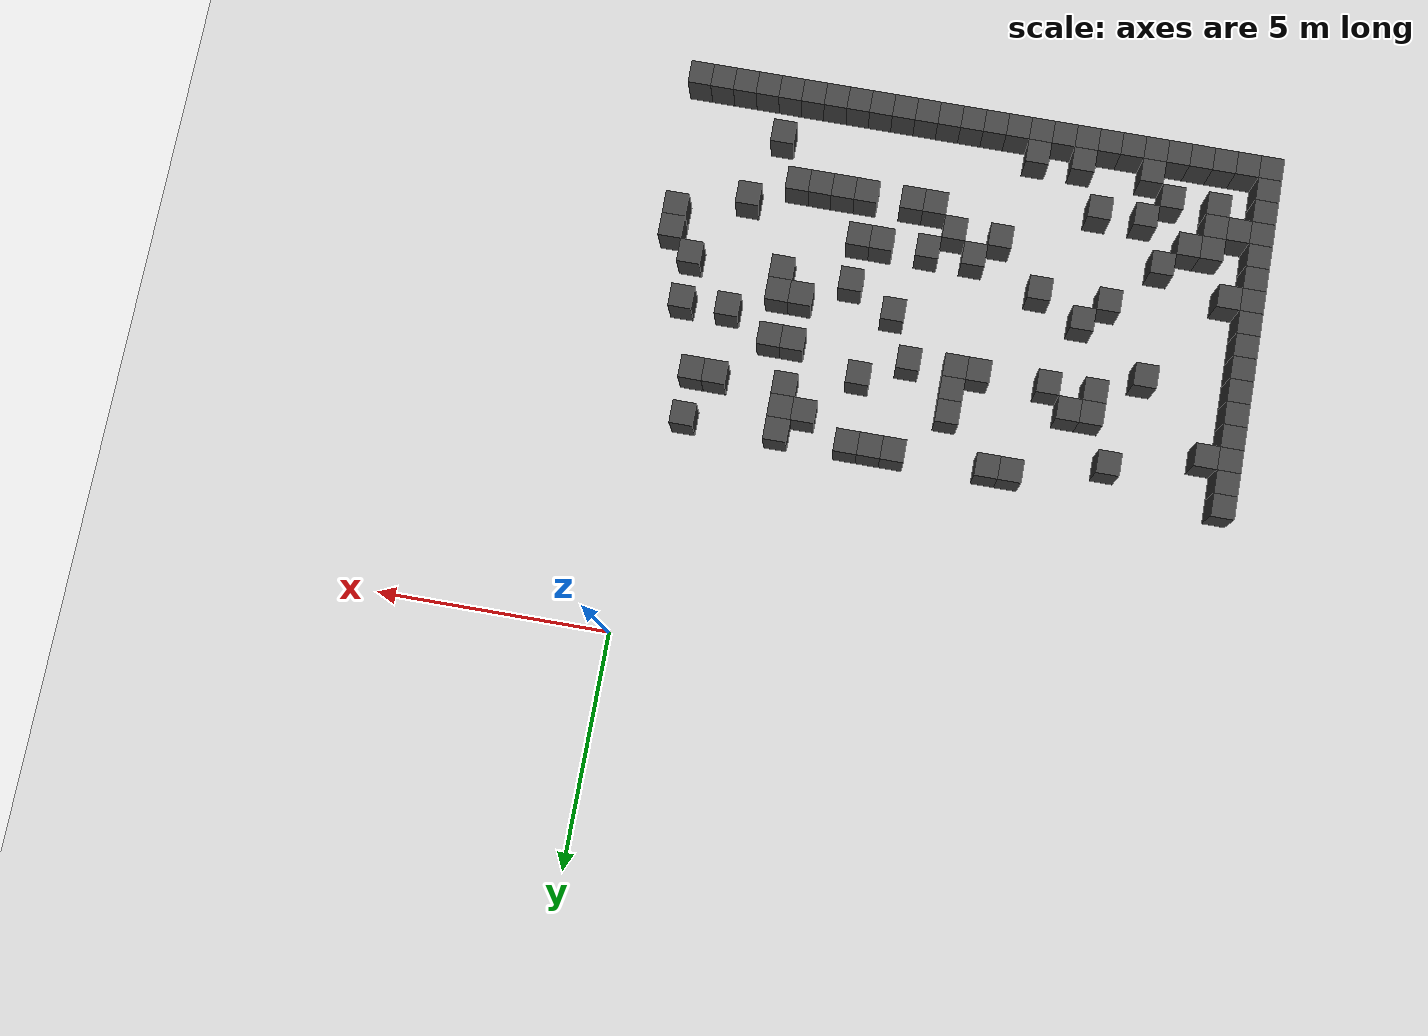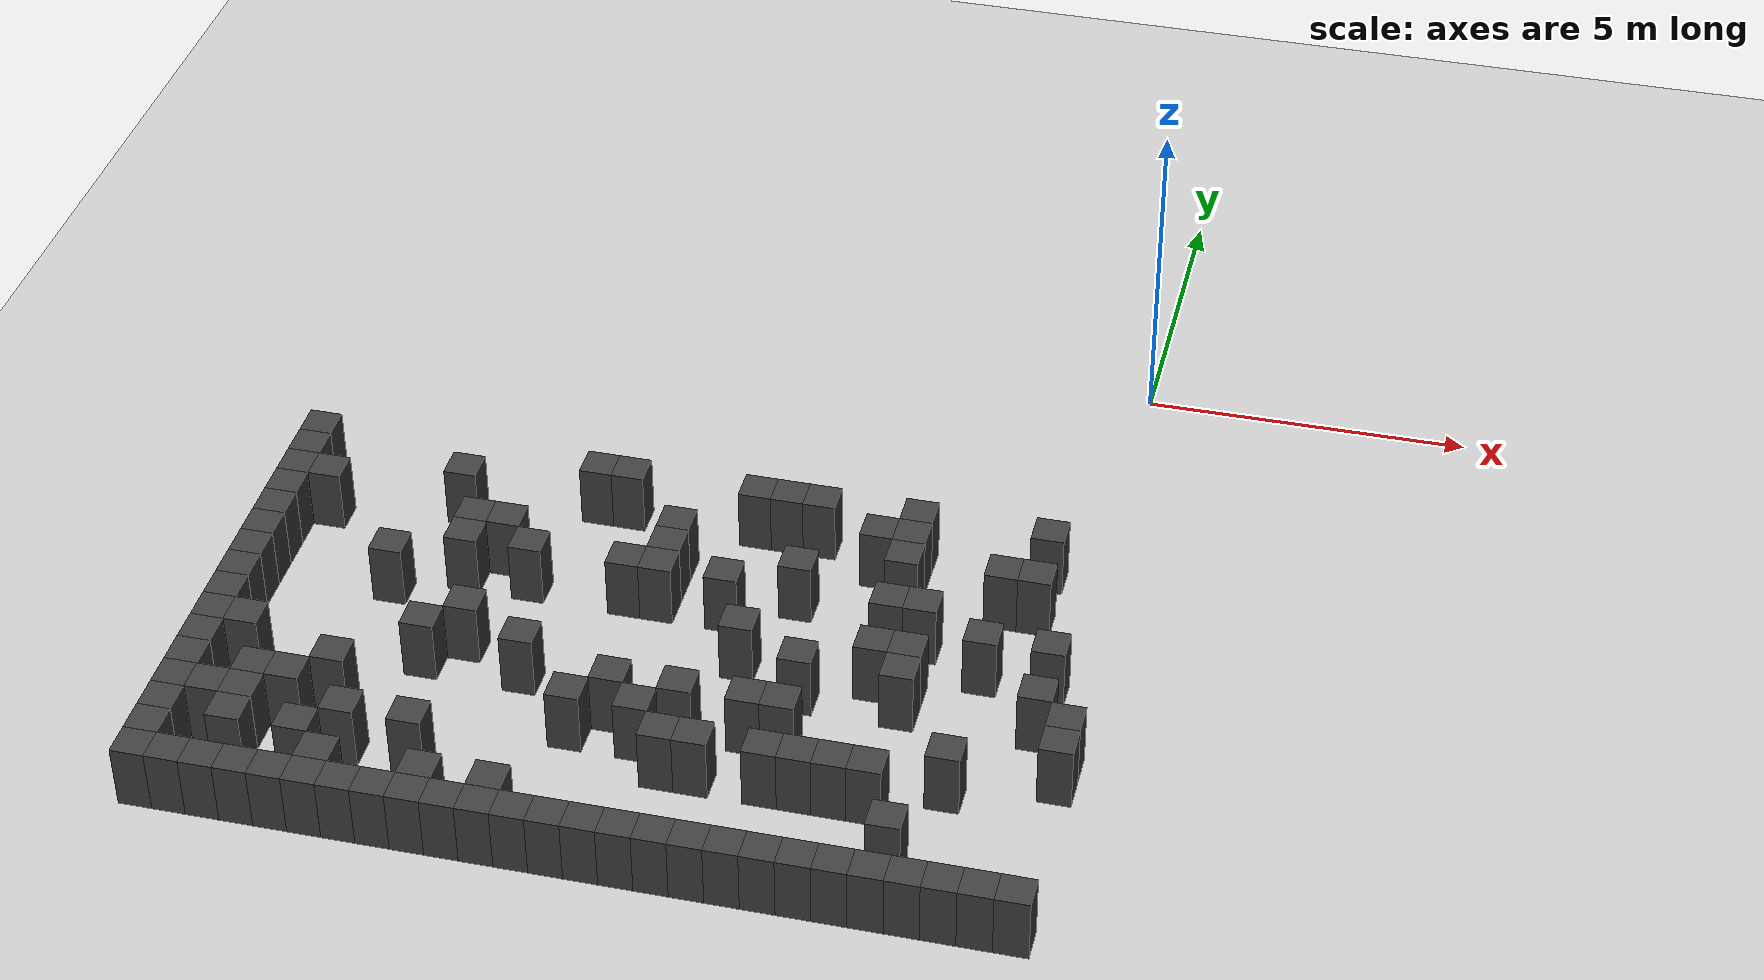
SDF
<sdf version="1.7">
 <world name="map_4009">
  <model name="ground_plane">
   <static>true</static>
   <link name="link">
    <collision name="collision">
     <geometry><plane><normal>0 0 1</normal><size>200 200</size></plane></geometry>
    </collision>
    <visual name="visual">
     <geometry><plane><normal>0 0 1</normal><size>200 200</size></plane></geometry>
     <material><ambient>0.8 0.8 0.8 1</ambient><diffuse>0.8 0.8 0.8 1</diffuse></material>
    </visual>
   </link>
  </model>
  <model name="maze_environment">
   <static>true</static>
   <link name="wall_420">
    <pose>-12.250 -4.750 0.500 0 0 0</pose>
    <collision name="col"><geometry><box><size>0.5 0.5 1.0</size></box></geometry></collision>
    <visual name="vis">
     <geometry><box><size>0.5 0.5 1.0</size></box></geometry>
     <material><ambient>0.15 0.15 0.15 1</ambient><diffuse>0.25 0.25 0.25 1</diffuse></material>
    </visual>
   </link>
   <link name="wall_421">
    <pose>-7.750 -4.750 0.500 0 0 0</pose>
    <collision name="col"><geometry><box><size>0.5 0.5 1.0</size></box></geometry></collision>
    <visual name="vis">
     <geometry><box><size>0.5 0.5 1.0</size></box></geometry>
     <material><ambient>0.15 0.15 0.15 1</ambient><diffuse>0.25 0.25 0.25 1</diffuse></material>
    </visual>
   </link>
   <link name="wall_422">
    <pose>-7.250 -4.750 0.500 0 0 0</pose>
    <collision name="col"><geometry><box><size>0.5 0.5 1.0</size></box></geometry></collision>
    <visual name="vis">
     <geometry><box><size>0.5 0.5 1.0</size></box></geometry>
     <material><ambient>0.15 0.15 0.15 1</ambient><diffuse>0.25 0.25 0.25 1</diffuse></material>
    </visual>
   </link>
   <link name="wall_423">
    <pose>-5.250 -4.750 0.500 0 0 0</pose>
    <collision name="col"><geometry><box><size>0.5 0.5 1.0</size></box></geometry></collision>
    <visual name="vis">
     <geometry><box><size>0.5 0.5 1.0</size></box></geometry>
     <material><ambient>0.15 0.15 0.15 1</ambient><diffuse>0.25 0.25 0.25 1</diffuse></material>
    </visual>
   </link>
   <link name="wall_424">
    <pose>-4.750 -4.750 0.500 0 0 0</pose>
    <collision name="col"><geometry><box><size>0.5 0.5 1.0</size></box></geometry></collision>
    <visual name="vis">
     <geometry><box><size>0.5 0.5 1.0</size></box></geometry>
     <material><ambient>0.15 0.15 0.15 1</ambient><diffuse>0.25 0.25 0.25 1</diffuse></material>
    </visual>
   </link>
   <link name="wall_425">
    <pose>-4.250 -4.750 0.500 0 0 0</pose>
    <collision name="col"><geometry><box><size>0.5 0.5 1.0</size></box></geometry></collision>
    <visual name="vis">
     <geometry><box><size>0.5 0.5 1.0</size></box></geometry>
     <material><ambient>0.15 0.15 0.15 1</ambient><diffuse>0.25 0.25 0.25 1</diffuse></material>
    </visual>
   </link>
   <link name="wall_426">
    <pose>-2.750 -4.750 0.500 0 0 0</pose>
    <collision name="col"><geometry><box><size>0.5 0.5 1.0</size></box></geometry></collision>
    <visual name="vis">
     <geometry><box><size>0.5 0.5 1.0</size></box></geometry>
     <material><ambient>0.15 0.15 0.15 1</ambient><diffuse>0.25 0.25 0.25 1</diffuse></material>
    </visual>
   </link>
   <link name="wall_427">
    <pose>-0.750 -4.750 0.500 0 0 0</pose>
    <collision name="col"><geometry><box><size>0.5 0.5 1.0</size></box></geometry></collision>
    <visual name="vis">
     <geometry><box><size>0.5 0.5 1.0</size></box></geometry>
     <material><ambient>0.15 0.15 0.15 1</ambient><diffuse>0.25 0.25 0.25 1</diffuse></material>
    </visual>
   </link>
   <link name="wall_435">
    <pose>-12.250 -5.250 0.500 0 0 0</pose>
    <collision name="col"><geometry><box><size>0.5 0.5 1.0</size></box></geometry></collision>
    <visual name="vis">
     <geometry><box><size>0.5 0.5 1.0</size></box></geometry>
     <material><ambient>0.15 0.15 0.15 1</ambient><diffuse>0.25 0.25 0.25 1</diffuse></material>
    </visual>
   </link>
   <link name="wall_436">
    <pose>-9.750 -5.250 0.500 0 0 0</pose>
    <collision name="col"><geometry><box><size>0.5 0.5 1.0</size></box></geometry></collision>
    <visual name="vis">
     <geometry><box><size>0.5 0.5 1.0</size></box></geometry>
     <material><ambient>0.15 0.15 0.15 1</ambient><diffuse>0.25 0.25 0.25 1</diffuse></material>
    </visual>
   </link>
   <link name="wall_437">
    <pose>-3.250 -5.250 0.500 0 0 0</pose>
    <collision name="col"><geometry><box><size>0.5 0.5 1.0</size></box></geometry></collision>
    <visual name="vis">
     <geometry><box><size>0.5 0.5 1.0</size></box></geometry>
     <material><ambient>0.15 0.15 0.15 1</ambient><diffuse>0.25 0.25 0.25 1</diffuse></material>
    </visual>
   </link>
   <link name="wall_438">
    <pose>-2.750 -5.250 0.500 0 0 0</pose>
    <collision name="col"><geometry><box><size>0.5 0.5 1.0</size></box></geometry></collision>
    <visual name="vis">
     <geometry><box><size>0.5 0.5 1.0</size></box></geometry>
     <material><ambient>0.15 0.15 0.15 1</ambient><diffuse>0.25 0.25 0.25 1</diffuse></material>
    </visual>
   </link>
   <link name="wall_444">
    <pose>-12.250 -5.750 0.500 0 0 0</pose>
    <collision name="col"><geometry><box><size>0.5 0.5 1.0</size></box></geometry></collision>
    <visual name="vis">
     <geometry><box><size>0.5 0.5 1.0</size></box></geometry>
     <material><ambient>0.15 0.15 0.15 1</ambient><diffuse>0.25 0.25 0.25 1</diffuse></material>
    </visual>
   </link>
   <link name="wall_445">
    <pose>-11.750 -5.750 0.500 0 0 0</pose>
    <collision name="col"><geometry><box><size>0.5 0.5 1.0</size></box></geometry></collision>
    <visual name="vis">
     <geometry><box><size>0.5 0.5 1.0</size></box></geometry>
     <material><ambient>0.15 0.15 0.15 1</ambient><diffuse>0.25 0.25 0.25 1</diffuse></material>
    </visual>
   </link>
   <link name="wall_446">
    <pose>-6.250 -5.750 0.500 0 0 0</pose>
    <collision name="col"><geometry><box><size>0.5 0.5 1.0</size></box></geometry></collision>
    <visual name="vis">
     <geometry><box><size>0.5 0.5 1.0</size></box></geometry>
     <material><ambient>0.15 0.15 0.15 1</ambient><diffuse>0.25 0.25 0.25 1</diffuse></material>
    </visual>
   </link>
   <link name="wall_447">
    <pose>-2.750 -5.750 0.500 0 0 0</pose>
    <collision name="col"><geometry><box><size>0.5 0.5 1.0</size></box></geometry></collision>
    <visual name="vis">
     <geometry><box><size>0.5 0.5 1.0</size></box></geometry>
     <material><ambient>0.15 0.15 0.15 1</ambient><diffuse>0.25 0.25 0.25 1</diffuse></material>
    </visual>
   </link>
   <link name="wall_448">
    <pose>-1.250 -5.750 0.500 0 0 0</pose>
    <collision name="col"><geometry><box><size>0.5 0.5 1.0</size></box></geometry></collision>
    <visual name="vis">
     <geometry><box><size>0.5 0.5 1.0</size></box></geometry>
     <material><ambient>0.15 0.15 0.15 1</ambient><diffuse>0.25 0.25 0.25 1</diffuse></material>
    </visual>
   </link>
   <link name="wall_449">
    <pose>-0.750 -5.750 0.500 0 0 0</pose>
    <collision name="col"><geometry><box><size>0.5 0.5 1.0</size></box></geometry></collision>
    <visual name="vis">
     <geometry><box><size>0.5 0.5 1.0</size></box></geometry>
     <material><ambient>0.15 0.15 0.15 1</ambient><diffuse>0.25 0.25 0.25 1</diffuse></material>
    </visual>
   </link>
   <link name="wall_455">
    <pose>-12.250 -6.250 0.500 0 0 0</pose>
    <collision name="col"><geometry><box><size>0.5 0.5 1.0</size></box></geometry></collision>
    <visual name="vis">
     <geometry><box><size>0.5 0.5 1.0</size></box></geometry>
     <material><ambient>0.15 0.15 0.15 1</ambient><diffuse>0.25 0.25 0.25 1</diffuse></material>
    </visual>
   </link>
   <link name="wall_456">
    <pose>-9.250 -6.250 0.500 0 0 0</pose>
    <collision name="col"><geometry><box><size>0.5 0.5 1.0</size></box></geometry></collision>
    <visual name="vis">
     <geometry><box><size>0.5 0.5 1.0</size></box></geometry>
     <material><ambient>0.15 0.15 0.15 1</ambient><diffuse>0.25 0.25 0.25 1</diffuse></material>
    </visual>
   </link>
   <link name="wall_457">
    <pose>-8.750 -6.250 0.500 0 0 0</pose>
    <collision name="col"><geometry><box><size>0.5 0.5 1.0</size></box></geometry></collision>
    <visual name="vis">
     <geometry><box><size>0.5 0.5 1.0</size></box></geometry>
     <material><ambient>0.15 0.15 0.15 1</ambient><diffuse>0.25 0.25 0.25 1</diffuse></material>
    </visual>
   </link>
   <link name="wall_458">
    <pose>-6.250 -6.250 0.500 0 0 0</pose>
    <collision name="col"><geometry><box><size>0.5 0.5 1.0</size></box></geometry></collision>
    <visual name="vis">
     <geometry><box><size>0.5 0.5 1.0</size></box></geometry>
     <material><ambient>0.15 0.15 0.15 1</ambient><diffuse>0.25 0.25 0.25 1</diffuse></material>
    </visual>
   </link>
   <link name="wall_459">
    <pose>-4.250 -6.250 0.500 0 0 0</pose>
    <collision name="col"><geometry><box><size>0.5 0.5 1.0</size></box></geometry></collision>
    <visual name="vis">
     <geometry><box><size>0.5 0.5 1.0</size></box></geometry>
     <material><ambient>0.15 0.15 0.15 1</ambient><diffuse>0.25 0.25 0.25 1</diffuse></material>
    </visual>
   </link>
   <link name="wall_464">
    <pose>-12.250 -6.750 0.500 0 0 0</pose>
    <collision name="col"><geometry><box><size>0.5 0.5 1.0</size></box></geometry></collision>
    <visual name="vis">
     <geometry><box><size>0.5 0.5 1.0</size></box></geometry>
     <material><ambient>0.15 0.15 0.15 1</ambient><diffuse>0.25 0.25 0.25 1</diffuse></material>
    </visual>
   </link>
   <link name="wall_465">
    <pose>-9.250 -6.750 0.500 0 0 0</pose>
    <collision name="col"><geometry><box><size>0.5 0.5 1.0</size></box></geometry></collision>
    <visual name="vis">
     <geometry><box><size>0.5 0.5 1.0</size></box></geometry>
     <material><ambient>0.15 0.15 0.15 1</ambient><diffuse>0.25 0.25 0.25 1</diffuse></material>
    </visual>
   </link>
   <link name="wall_466">
    <pose>-8.250 -6.750 0.500 0 0 0</pose>
    <collision name="col"><geometry><box><size>0.5 0.5 1.0</size></box></geometry></collision>
    <visual name="vis">
     <geometry><box><size>0.5 0.5 1.0</size></box></geometry>
     <material><ambient>0.15 0.15 0.15 1</ambient><diffuse>0.25 0.25 0.25 1</diffuse></material>
    </visual>
   </link>
   <link name="wall_467">
    <pose>-6.750 -6.750 0.500 0 0 0</pose>
    <collision name="col"><geometry><box><size>0.5 0.5 1.0</size></box></geometry></collision>
    <visual name="vis">
     <geometry><box><size>0.5 0.5 1.0</size></box></geometry>
     <material><ambient>0.15 0.15 0.15 1</ambient><diffuse>0.25 0.25 0.25 1</diffuse></material>
    </visual>
   </link>
   <link name="wall_468">
    <pose>-6.250 -6.750 0.500 0 0 0</pose>
    <collision name="col"><geometry><box><size>0.5 0.5 1.0</size></box></geometry></collision>
    <visual name="vis">
     <geometry><box><size>0.5 0.5 1.0</size></box></geometry>
     <material><ambient>0.15 0.15 0.15 1</ambient><diffuse>0.25 0.25 0.25 1</diffuse></material>
    </visual>
   </link>
   <link name="wall_469">
    <pose>-5.250 -6.750 0.500 0 0 0</pose>
    <collision name="col"><geometry><box><size>0.5 0.5 1.0</size></box></geometry></collision>
    <visual name="vis">
     <geometry><box><size>0.5 0.5 1.0</size></box></geometry>
     <material><ambient>0.15 0.15 0.15 1</ambient><diffuse>0.25 0.25 0.25 1</diffuse></material>
    </visual>
   </link>
   <link name="wall_470">
    <pose>-2.750 -6.750 0.500 0 0 0</pose>
    <collision name="col"><geometry><box><size>0.5 0.5 1.0</size></box></geometry></collision>
    <visual name="vis">
     <geometry><box><size>0.5 0.5 1.0</size></box></geometry>
     <material><ambient>0.15 0.15 0.15 1</ambient><diffuse>0.25 0.25 0.25 1</diffuse></material>
    </visual>
   </link>
   <link name="wall_471">
    <pose>-2.250 -6.750 0.500 0 0 0</pose>
    <collision name="col"><geometry><box><size>0.5 0.5 1.0</size></box></geometry></collision>
    <visual name="vis">
     <geometry><box><size>0.5 0.5 1.0</size></box></geometry>
     <material><ambient>0.15 0.15 0.15 1</ambient><diffuse>0.25 0.25 0.25 1</diffuse></material>
    </visual>
   </link>
   <link name="wall_480">
    <pose>-12.250 -7.250 0.500 0 0 0</pose>
    <collision name="col"><geometry><box><size>0.5 0.5 1.0</size></box></geometry></collision>
    <visual name="vis">
     <geometry><box><size>0.5 0.5 1.0</size></box></geometry>
     <material><ambient>0.15 0.15 0.15 1</ambient><diffuse>0.25 0.25 0.25 1</diffuse></material>
    </visual>
   </link>
   <link name="wall_481">
    <pose>-10.250 -7.250 0.500 0 0 0</pose>
    <collision name="col"><geometry><box><size>0.5 0.5 1.0</size></box></geometry></collision>
    <visual name="vis">
     <geometry><box><size>0.5 0.5 1.0</size></box></geometry>
     <material><ambient>0.15 0.15 0.15 1</ambient><diffuse>0.25 0.25 0.25 1</diffuse></material>
    </visual>
   </link>
   <link name="wall_482">
    <pose>-1.250 -7.250 0.500 0 0 0</pose>
    <collision name="col"><geometry><box><size>0.5 0.5 1.0</size></box></geometry></collision>
    <visual name="vis">
     <geometry><box><size>0.5 0.5 1.0</size></box></geometry>
     <material><ambient>0.15 0.15 0.15 1</ambient><diffuse>0.25 0.25 0.25 1</diffuse></material>
    </visual>
   </link>
   <link name="wall_483">
    <pose>-0.250 -7.250 0.500 0 0 0</pose>
    <collision name="col"><geometry><box><size>0.5 0.5 1.0</size></box></geometry></collision>
    <visual name="vis">
     <geometry><box><size>0.5 0.5 1.0</size></box></geometry>
     <material><ambient>0.15 0.15 0.15 1</ambient><diffuse>0.25 0.25 0.25 1</diffuse></material>
    </visual>
   </link>
   <link name="wall_497">
    <pose>-12.250 -7.750 0.500 0 0 0</pose>
    <collision name="col"><geometry><box><size>0.5 0.5 1.0</size></box></geometry></collision>
    <visual name="vis">
     <geometry><box><size>0.5 0.5 1.0</size></box></geometry>
     <material><ambient>0.15 0.15 0.15 1</ambient><diffuse>0.25 0.25 0.25 1</diffuse></material>
    </visual>
   </link>
   <link name="wall_498">
    <pose>-4.750 -7.750 0.500 0 0 0</pose>
    <collision name="col"><geometry><box><size>0.5 0.5 1.0</size></box></geometry></collision>
    <visual name="vis">
     <geometry><box><size>0.5 0.5 1.0</size></box></geometry>
     <material><ambient>0.15 0.15 0.15 1</ambient><diffuse>0.25 0.25 0.25 1</diffuse></material>
    </visual>
   </link>
   <link name="wall_499">
    <pose>-2.750 -7.750 0.500 0 0 0</pose>
    <collision name="col"><geometry><box><size>0.5 0.5 1.0</size></box></geometry></collision>
    <visual name="vis">
     <geometry><box><size>0.5 0.5 1.0</size></box></geometry>
     <material><ambient>0.15 0.15 0.15 1</ambient><diffuse>0.25 0.25 0.25 1</diffuse></material>
    </visual>
   </link>
   <link name="wall_500">
    <pose>-2.250 -7.750 0.500 0 0 0</pose>
    <collision name="col"><geometry><box><size>0.5 0.5 1.0</size></box></geometry></collision>
    <visual name="vis">
     <geometry><box><size>0.5 0.5 1.0</size></box></geometry>
     <material><ambient>0.15 0.15 0.15 1</ambient><diffuse>0.25 0.25 0.25 1</diffuse></material>
    </visual>
   </link>
   <link name="wall_505">
    <pose>-12.250 -8.250 0.500 0 0 0</pose>
    <collision name="col"><geometry><box><size>0.5 0.5 1.0</size></box></geometry></collision>
    <visual name="vis">
     <geometry><box><size>0.5 0.5 1.0</size></box></geometry>
     <material><ambient>0.15 0.15 0.15 1</ambient><diffuse>0.25 0.25 0.25 1</diffuse></material>
    </visual>
   </link>
   <link name="wall_506">
    <pose>-8.750 -8.250 0.500 0 0 0</pose>
    <collision name="col"><geometry><box><size>0.5 0.5 1.0</size></box></geometry></collision>
    <visual name="vis">
     <geometry><box><size>0.5 0.5 1.0</size></box></geometry>
     <material><ambient>0.15 0.15 0.15 1</ambient><diffuse>0.25 0.25 0.25 1</diffuse></material>
    </visual>
   </link>
   <link name="wall_507">
    <pose>-3.750 -8.250 0.500 0 0 0</pose>
    <collision name="col"><geometry><box><size>0.5 0.5 1.0</size></box></geometry></collision>
    <visual name="vis">
     <geometry><box><size>0.5 0.5 1.0</size></box></geometry>
     <material><ambient>0.15 0.15 0.15 1</ambient><diffuse>0.25 0.25 0.25 1</diffuse></material>
    </visual>
   </link>
   <link name="wall_508">
    <pose>-2.250 -8.250 0.500 0 0 0</pose>
    <collision name="col"><geometry><box><size>0.5 0.5 1.0</size></box></geometry></collision>
    <visual name="vis">
     <geometry><box><size>0.5 0.5 1.0</size></box></geometry>
     <material><ambient>0.15 0.15 0.15 1</ambient><diffuse>0.25 0.25 0.25 1</diffuse></material>
    </visual>
   </link>
   <link name="wall_509">
    <pose>-0.250 -8.250 0.500 0 0 0</pose>
    <collision name="col"><geometry><box><size>0.5 0.5 1.0</size></box></geometry></collision>
    <visual name="vis">
     <geometry><box><size>0.5 0.5 1.0</size></box></geometry>
     <material><ambient>0.15 0.15 0.15 1</ambient><diffuse>0.25 0.25 0.25 1</diffuse></material>
    </visual>
   </link>
   <link name="wall_516">
    <pose>-12.250 -8.750 0.500 0 0 0</pose>
    <collision name="col"><geometry><box><size>0.5 0.5 1.0</size></box></geometry></collision>
    <visual name="vis">
     <geometry><box><size>0.5 0.5 1.0</size></box></geometry>
     <material><ambient>0.15 0.15 0.15 1</ambient><diffuse>0.25 0.25 0.25 1</diffuse></material>
    </visual>
   </link>
   <link name="wall_517">
    <pose>-9.250 -8.750 0.500 0 0 0</pose>
    <collision name="col"><geometry><box><size>0.5 0.5 1.0</size></box></geometry></collision>
    <visual name="vis">
     <geometry><box><size>0.5 0.5 1.0</size></box></geometry>
     <material><ambient>0.15 0.15 0.15 1</ambient><diffuse>0.25 0.25 0.25 1</diffuse></material>
    </visual>
   </link>
   <link name="wall_518">
    <pose>-7.750 -8.750 0.500 0 0 0</pose>
    <collision name="col"><geometry><box><size>0.5 0.5 1.0</size></box></geometry></collision>
    <visual name="vis">
     <geometry><box><size>0.5 0.5 1.0</size></box></geometry>
     <material><ambient>0.15 0.15 0.15 1</ambient><diffuse>0.25 0.25 0.25 1</diffuse></material>
    </visual>
   </link>
   <link name="wall_519">
    <pose>0.250 -8.750 0.500 0 0 0</pose>
    <collision name="col"><geometry><box><size>0.5 0.5 1.0</size></box></geometry></collision>
    <visual name="vis">
     <geometry><box><size>0.5 0.5 1.0</size></box></geometry>
     <material><ambient>0.15 0.15 0.15 1</ambient><diffuse>0.25 0.25 0.25 1</diffuse></material>
    </visual>
   </link>
   <link name="wall_527">
    <pose>-12.250 -9.250 0.500 0 0 0</pose>
    <collision name="col"><geometry><box><size>0.5 0.5 1.0</size></box></geometry></collision>
    <visual name="vis">
     <geometry><box><size>0.5 0.5 1.0</size></box></geometry>
     <material><ambient>0.15 0.15 0.15 1</ambient><diffuse>0.25 0.25 0.25 1</diffuse></material>
    </visual>
   </link>
   <link name="wall_528">
    <pose>-11.750 -9.250 0.500 0 0 0</pose>
    <collision name="col"><geometry><box><size>0.5 0.5 1.0</size></box></geometry></collision>
    <visual name="vis">
     <geometry><box><size>0.5 0.5 1.0</size></box></geometry>
     <material><ambient>0.15 0.15 0.15 1</ambient><diffuse>0.25 0.25 0.25 1</diffuse></material>
    </visual>
   </link>
   <link name="wall_529">
    <pose>-6.250 -9.250 0.500 0 0 0</pose>
    <collision name="col"><geometry><box><size>0.5 0.5 1.0</size></box></geometry></collision>
    <visual name="vis">
     <geometry><box><size>0.5 0.5 1.0</size></box></geometry>
     <material><ambient>0.15 0.15 0.15 1</ambient><diffuse>0.25 0.25 0.25 1</diffuse></material>
    </visual>
   </link>
   <link name="wall_530">
    <pose>-5.250 -9.250 0.500 0 0 0</pose>
    <collision name="col"><geometry><box><size>0.5 0.5 1.0</size></box></geometry></collision>
    <visual name="vis">
     <geometry><box><size>0.5 0.5 1.0</size></box></geometry>
     <material><ambient>0.15 0.15 0.15 1</ambient><diffuse>0.25 0.25 0.25 1</diffuse></material>
    </visual>
   </link>
   <link name="wall_531">
    <pose>-4.250 -9.250 0.500 0 0 0</pose>
    <collision name="col"><geometry><box><size>0.5 0.5 1.0</size></box></geometry></collision>
    <visual name="vis">
     <geometry><box><size>0.5 0.5 1.0</size></box></geometry>
     <material><ambient>0.15 0.15 0.15 1</ambient><diffuse>0.25 0.25 0.25 1</diffuse></material>
    </visual>
   </link>
   <link name="wall_532">
    <pose>-3.750 -9.250 0.500 0 0 0</pose>
    <collision name="col"><geometry><box><size>0.5 0.5 1.0</size></box></geometry></collision>
    <visual name="vis">
     <geometry><box><size>0.5 0.5 1.0</size></box></geometry>
     <material><ambient>0.15 0.15 0.15 1</ambient><diffuse>0.25 0.25 0.25 1</diffuse></material>
    </visual>
   </link>
   <link name="wall_533">
    <pose>0.250 -9.250 0.500 0 0 0</pose>
    <collision name="col"><geometry><box><size>0.5 0.5 1.0</size></box></geometry></collision>
    <visual name="vis">
     <geometry><box><size>0.5 0.5 1.0</size></box></geometry>
     <material><ambient>0.15 0.15 0.15 1</ambient><diffuse>0.25 0.25 0.25 1</diffuse></material>
    </visual>
   </link>
   <link name="wall_543">
    <pose>-12.250 -9.750 0.500 0 0 0</pose>
    <collision name="col"><geometry><box><size>0.5 0.5 1.0</size></box></geometry></collision>
    <visual name="vis">
     <geometry><box><size>0.5 0.5 1.0</size></box></geometry>
     <material><ambient>0.15 0.15 0.15 1</ambient><diffuse>0.25 0.25 0.25 1</diffuse></material>
    </visual>
   </link>
   <link name="wall_544">
    <pose>-10.250 -9.750 0.500 0 0 0</pose>
    <collision name="col"><geometry><box><size>0.5 0.5 1.0</size></box></geometry></collision>
    <visual name="vis">
     <geometry><box><size>0.5 0.5 1.0</size></box></geometry>
     <material><ambient>0.15 0.15 0.15 1</ambient><diffuse>0.25 0.25 0.25 1</diffuse></material>
    </visual>
   </link>
   <link name="wall_545">
    <pose>-6.750 -9.750 0.500 0 0 0</pose>
    <collision name="col"><geometry><box><size>0.5 0.5 1.0</size></box></geometry></collision>
    <visual name="vis">
     <geometry><box><size>0.5 0.5 1.0</size></box></geometry>
     <material><ambient>0.15 0.15 0.15 1</ambient><diffuse>0.25 0.25 0.25 1</diffuse></material>
    </visual>
   </link>
   <link name="wall_546">
    <pose>-5.750 -9.750 0.500 0 0 0</pose>
    <collision name="col"><geometry><box><size>0.5 0.5 1.0</size></box></geometry></collision>
    <visual name="vis">
     <geometry><box><size>0.5 0.5 1.0</size></box></geometry>
     <material><ambient>0.15 0.15 0.15 1</ambient><diffuse>0.25 0.25 0.25 1</diffuse></material>
    </visual>
   </link>
   <link name="wall_547">
    <pose>-1.250 -9.750 0.500 0 0 0</pose>
    <collision name="col"><geometry><box><size>0.5 0.5 1.0</size></box></geometry></collision>
    <visual name="vis">
     <geometry><box><size>0.5 0.5 1.0</size></box></geometry>
     <material><ambient>0.15 0.15 0.15 1</ambient><diffuse>0.25 0.25 0.25 1</diffuse></material>
    </visual>
   </link>
   <link name="wall_552">
    <pose>-12.250 -10.250 0.500 0 0 0</pose>
    <collision name="col"><geometry><box><size>0.5 0.5 1.0</size></box></geometry></collision>
    <visual name="vis">
     <geometry><box><size>0.5 0.5 1.0</size></box></geometry>
     <material><ambient>0.15 0.15 0.15 1</ambient><diffuse>0.25 0.25 0.25 1</diffuse></material>
    </visual>
   </link>
   <link name="wall_553">
    <pose>-11.250 -10.250 0.500 0 0 0</pose>
    <collision name="col"><geometry><box><size>0.5 0.5 1.0</size></box></geometry></collision>
    <visual name="vis">
     <geometry><box><size>0.5 0.5 1.0</size></box></geometry>
     <material><ambient>0.15 0.15 0.15 1</ambient><diffuse>0.25 0.25 0.25 1</diffuse></material>
    </visual>
   </link>
   <link name="wall_554">
    <pose>-10.750 -10.250 0.500 0 0 0</pose>
    <collision name="col"><geometry><box><size>0.5 0.5 1.0</size></box></geometry></collision>
    <visual name="vis">
     <geometry><box><size>0.5 0.5 1.0</size></box></geometry>
     <material><ambient>0.15 0.15 0.15 1</ambient><diffuse>0.25 0.25 0.25 1</diffuse></material>
    </visual>
   </link>
   <link name="wall_555">
    <pose>-5.250 -10.250 0.500 0 0 0</pose>
    <collision name="col"><geometry><box><size>0.5 0.5 1.0</size></box></geometry></collision>
    <visual name="vis">
     <geometry><box><size>0.5 0.5 1.0</size></box></geometry>
     <material><ambient>0.15 0.15 0.15 1</ambient><diffuse>0.25 0.25 0.25 1</diffuse></material>
    </visual>
   </link>
   <link name="wall_556">
    <pose>-4.750 -10.250 0.500 0 0 0</pose>
    <collision name="col"><geometry><box><size>0.5 0.5 1.0</size></box></geometry></collision>
    <visual name="vis">
     <geometry><box><size>0.5 0.5 1.0</size></box></geometry>
     <material><ambient>0.15 0.15 0.15 1</ambient><diffuse>0.25 0.25 0.25 1</diffuse></material>
    </visual>
   </link>
   <link name="wall_557">
    <pose>-3.750 -10.250 0.500 0 0 0</pose>
    <collision name="col"><geometry><box><size>0.5 0.5 1.0</size></box></geometry></collision>
    <visual name="vis">
     <geometry><box><size>0.5 0.5 1.0</size></box></geometry>
     <material><ambient>0.15 0.15 0.15 1</ambient><diffuse>0.25 0.25 0.25 1</diffuse></material>
    </visual>
   </link>
   <link name="wall_558">
    <pose>-3.250 -10.250 0.500 0 0 0</pose>
    <collision name="col"><geometry><box><size>0.5 0.5 1.0</size></box></geometry></collision>
    <visual name="vis">
     <geometry><box><size>0.5 0.5 1.0</size></box></geometry>
     <material><ambient>0.15 0.15 0.15 1</ambient><diffuse>0.25 0.25 0.25 1</diffuse></material>
    </visual>
   </link>
   <link name="wall_559">
    <pose>-2.750 -10.250 0.500 0 0 0</pose>
    <collision name="col"><geometry><box><size>0.5 0.5 1.0</size></box></geometry></collision>
    <visual name="vis">
     <geometry><box><size>0.5 0.5 1.0</size></box></geometry>
     <material><ambient>0.15 0.15 0.15 1</ambient><diffuse>0.25 0.25 0.25 1</diffuse></material>
    </visual>
   </link>
   <link name="wall_560">
    <pose>-2.250 -10.250 0.500 0 0 0</pose>
    <collision name="col"><geometry><box><size>0.5 0.5 1.0</size></box></geometry></collision>
    <visual name="vis">
     <geometry><box><size>0.5 0.5 1.0</size></box></geometry>
     <material><ambient>0.15 0.15 0.15 1</ambient><diffuse>0.25 0.25 0.25 1</diffuse></material>
    </visual>
   </link>
   <link name="wall_567">
    <pose>-12.250 -10.750 0.500 0 0 0</pose>
    <collision name="col"><geometry><box><size>0.5 0.5 1.0</size></box></geometry></collision>
    <visual name="vis">
     <geometry><box><size>0.5 0.5 1.0</size></box></geometry>
     <material><ambient>0.15 0.15 0.15 1</ambient><diffuse>0.25 0.25 0.25 1</diffuse></material>
    </visual>
   </link>
   <link name="wall_568">
    <pose>-11.750 -10.750 0.500 0 0 0</pose>
    <collision name="col"><geometry><box><size>0.5 0.5 1.0</size></box></geometry></collision>
    <visual name="vis">
     <geometry><box><size>0.5 0.5 1.0</size></box></geometry>
     <material><ambient>0.15 0.15 0.15 1</ambient><diffuse>0.25 0.25 0.25 1</diffuse></material>
    </visual>
   </link>
   <link name="wall_569">
    <pose>-11.250 -10.750 0.500 0 0 0</pose>
    <collision name="col"><geometry><box><size>0.5 0.5 1.0</size></box></geometry></collision>
    <visual name="vis">
     <geometry><box><size>0.5 0.5 1.0</size></box></geometry>
     <material><ambient>0.15 0.15 0.15 1</ambient><diffuse>0.25 0.25 0.25 1</diffuse></material>
    </visual>
   </link>
   <link name="wall_570">
    <pose>-9.750 -10.750 0.500 0 0 0</pose>
    <collision name="col"><geometry><box><size>0.5 0.5 1.0</size></box></geometry></collision>
    <visual name="vis">
     <geometry><box><size>0.5 0.5 1.0</size></box></geometry>
     <material><ambient>0.15 0.15 0.15 1</ambient><diffuse>0.25 0.25 0.25 1</diffuse></material>
    </visual>
   </link>
   <link name="wall_571">
    <pose>-8.750 -10.750 0.500 0 0 0</pose>
    <collision name="col"><geometry><box><size>0.5 0.5 1.0</size></box></geometry></collision>
    <visual name="vis">
     <geometry><box><size>0.5 0.5 1.0</size></box></geometry>
     <material><ambient>0.15 0.15 0.15 1</ambient><diffuse>0.25 0.25 0.25 1</diffuse></material>
    </visual>
   </link>
   <link name="wall_575">
    <pose>-12.250 -11.250 0.500 0 0 0</pose>
    <collision name="col"><geometry><box><size>0.5 0.5 1.0</size></box></geometry></collision>
    <visual name="vis">
     <geometry><box><size>0.5 0.5 1.0</size></box></geometry>
     <material><ambient>0.15 0.15 0.15 1</ambient><diffuse>0.25 0.25 0.25 1</diffuse></material>
    </visual>
   </link>
   <link name="wall_576">
    <pose>-11.250 -11.250 0.500 0 0 0</pose>
    <collision name="col"><geometry><box><size>0.5 0.5 1.0</size></box></geometry></collision>
    <visual name="vis">
     <geometry><box><size>0.5 0.5 1.0</size></box></geometry>
     <material><ambient>0.15 0.15 0.15 1</ambient><diffuse>0.25 0.25 0.25 1</diffuse></material>
    </visual>
   </link>
   <link name="wall_577">
    <pose>-10.250 -11.250 0.500 0 0 0</pose>
    <collision name="col"><geometry><box><size>0.5 0.5 1.0</size></box></geometry></collision>
    <visual name="vis">
     <geometry><box><size>0.5 0.5 1.0</size></box></geometry>
     <material><ambient>0.15 0.15 0.15 1</ambient><diffuse>0.25 0.25 0.25 1</diffuse></material>
    </visual>
   </link>
   <link name="wall_578">
    <pose>-1.750 -11.250 0.500 0 0 0</pose>
    <collision name="col"><geometry><box><size>0.5 0.5 1.0</size></box></geometry></collision>
    <visual name="vis">
     <geometry><box><size>0.5 0.5 1.0</size></box></geometry>
     <material><ambient>0.15 0.15 0.15 1</ambient><diffuse>0.25 0.25 0.25 1</diffuse></material>
    </visual>
   </link>
   <link name="wall_585">
    <pose>-12.250 -11.750 0.500 0 0 0</pose>
    <collision name="col"><geometry><box><size>0.5 0.5 1.0</size></box></geometry></collision>
    <visual name="vis">
     <geometry><box><size>0.5 0.5 1.0</size></box></geometry>
     <material><ambient>0.15 0.15 0.15 1</ambient><diffuse>0.25 0.25 0.25 1</diffuse></material>
    </visual>
   </link>
   <link name="wall_586">
    <pose>-9.750 -11.750 0.500 0 0 0</pose>
    <collision name="col"><geometry><box><size>0.5 0.5 1.0</size></box></geometry></collision>
    <visual name="vis">
     <geometry><box><size>0.5 0.5 1.0</size></box></geometry>
     <material><ambient>0.15 0.15 0.15 1</ambient><diffuse>0.25 0.25 0.25 1</diffuse></material>
    </visual>
   </link>
   <link name="wall_587">
    <pose>-8.250 -11.750 0.500 0 0 0</pose>
    <collision name="col"><geometry><box><size>0.5 0.5 1.0</size></box></geometry></collision>
    <visual name="vis">
     <geometry><box><size>0.5 0.5 1.0</size></box></geometry>
     <material><ambient>0.15 0.15 0.15 1</ambient><diffuse>0.25 0.25 0.25 1</diffuse></material>
    </visual>
   </link>
   <link name="wall_588">
    <pose>-7.250 -11.750 0.500 0 0 0</pose>
    <collision name="col"><geometry><box><size>0.5 0.5 1.0</size></box></geometry></collision>
    <visual name="vis">
     <geometry><box><size>0.5 0.5 1.0</size></box></geometry>
     <material><ambient>0.15 0.15 0.15 1</ambient><diffuse>0.25 0.25 0.25 1</diffuse></material>
    </visual>
   </link>
   <link name="wall_596">
    <pose>-12.250 -12.250 0.500 0 0 0</pose>
    <collision name="col"><geometry><box><size>0.5 0.5 1.0</size></box></geometry></collision>
    <visual name="vis">
     <geometry><box><size>0.5 0.5 1.0</size></box></geometry>
     <material><ambient>0.15 0.15 0.15 1</ambient><diffuse>0.25 0.25 0.25 1</diffuse></material>
    </visual>
   </link>
   <link name="wall_597">
    <pose>-11.750 -12.250 0.500 0 0 0</pose>
    <collision name="col"><geometry><box><size>0.5 0.5 1.0</size></box></geometry></collision>
    <visual name="vis">
     <geometry><box><size>0.5 0.5 1.0</size></box></geometry>
     <material><ambient>0.15 0.15 0.15 1</ambient><diffuse>0.25 0.25 0.25 1</diffuse></material>
    </visual>
   </link>
   <link name="wall_598">
    <pose>-11.250 -12.250 0.500 0 0 0</pose>
    <collision name="col"><geometry><box><size>0.5 0.5 1.0</size></box></geometry></collision>
    <visual name="vis">
     <geometry><box><size>0.5 0.5 1.0</size></box></geometry>
     <material><ambient>0.15 0.15 0.15 1</ambient><diffuse>0.25 0.25 0.25 1</diffuse></material>
    </visual>
   </link>
   <link name="wall_599">
    <pose>-10.750 -12.250 0.500 0 0 0</pose>
    <collision name="col"><geometry><box><size>0.5 0.5 1.0</size></box></geometry></collision>
    <visual name="vis">
     <geometry><box><size>0.5 0.5 1.0</size></box></geometry>
     <material><ambient>0.15 0.15 0.15 1</ambient><diffuse>0.25 0.25 0.25 1</diffuse></material>
    </visual>
   </link>
   <link name="wall_600">
    <pose>-10.250 -12.250 0.500 0 0 0</pose>
    <collision name="col"><geometry><box><size>0.5 0.5 1.0</size></box></geometry></collision>
    <visual name="vis">
     <geometry><box><size>0.5 0.5 1.0</size></box></geometry>
     <material><ambient>0.15 0.15 0.15 1</ambient><diffuse>0.25 0.25 0.25 1</diffuse></material>
    </visual>
   </link>
   <link name="wall_601">
    <pose>-9.750 -12.250 0.500 0 0 0</pose>
    <collision name="col"><geometry><box><size>0.5 0.5 1.0</size></box></geometry></collision>
    <visual name="vis">
     <geometry><box><size>0.5 0.5 1.0</size></box></geometry>
     <material><ambient>0.15 0.15 0.15 1</ambient><diffuse>0.25 0.25 0.25 1</diffuse></material>
    </visual>
   </link>
   <link name="wall_602">
    <pose>-9.250 -12.250 0.500 0 0 0</pose>
    <collision name="col"><geometry><box><size>0.5 0.5 1.0</size></box></geometry></collision>
    <visual name="vis">
     <geometry><box><size>0.5 0.5 1.0</size></box></geometry>
     <material><ambient>0.15 0.15 0.15 1</ambient><diffuse>0.25 0.25 0.25 1</diffuse></material>
    </visual>
   </link>
   <link name="wall_603">
    <pose>-8.750 -12.250 0.500 0 0 0</pose>
    <collision name="col"><geometry><box><size>0.5 0.5 1.0</size></box></geometry></collision>
    <visual name="vis">
     <geometry><box><size>0.5 0.5 1.0</size></box></geometry>
     <material><ambient>0.15 0.15 0.15 1</ambient><diffuse>0.25 0.25 0.25 1</diffuse></material>
    </visual>
   </link>
   <link name="wall_604">
    <pose>-8.250 -12.250 0.500 0 0 0</pose>
    <collision name="col"><geometry><box><size>0.5 0.5 1.0</size></box></geometry></collision>
    <visual name="vis">
     <geometry><box><size>0.5 0.5 1.0</size></box></geometry>
     <material><ambient>0.15 0.15 0.15 1</ambient><diffuse>0.25 0.25 0.25 1</diffuse></material>
    </visual>
   </link>
   <link name="wall_605">
    <pose>-7.750 -12.250 0.500 0 0 0</pose>
    <collision name="col"><geometry><box><size>0.5 0.5 1.0</size></box></geometry></collision>
    <visual name="vis">
     <geometry><box><size>0.5 0.5 1.0</size></box></geometry>
     <material><ambient>0.15 0.15 0.15 1</ambient><diffuse>0.25 0.25 0.25 1</diffuse></material>
    </visual>
   </link>
   <link name="wall_606">
    <pose>-7.250 -12.250 0.500 0 0 0</pose>
    <collision name="col"><geometry><box><size>0.5 0.5 1.0</size></box></geometry></collision>
    <visual name="vis">
     <geometry><box><size>0.5 0.5 1.0</size></box></geometry>
     <material><ambient>0.15 0.15 0.15 1</ambient><diffuse>0.25 0.25 0.25 1</diffuse></material>
    </visual>
   </link>
   <link name="wall_607">
    <pose>-6.750 -12.250 0.500 0 0 0</pose>
    <collision name="col"><geometry><box><size>0.5 0.5 1.0</size></box></geometry></collision>
    <visual name="vis">
     <geometry><box><size>0.5 0.5 1.0</size></box></geometry>
     <material><ambient>0.15 0.15 0.15 1</ambient><diffuse>0.25 0.25 0.25 1</diffuse></material>
    </visual>
   </link>
   <link name="wall_608">
    <pose>-6.250 -12.250 0.500 0 0 0</pose>
    <collision name="col"><geometry><box><size>0.5 0.5 1.0</size></box></geometry></collision>
    <visual name="vis">
     <geometry><box><size>0.5 0.5 1.0</size></box></geometry>
     <material><ambient>0.15 0.15 0.15 1</ambient><diffuse>0.25 0.25 0.25 1</diffuse></material>
    </visual>
   </link>
   <link name="wall_609">
    <pose>-5.750 -12.250 0.500 0 0 0</pose>
    <collision name="col"><geometry><box><size>0.5 0.5 1.0</size></box></geometry></collision>
    <visual name="vis">
     <geometry><box><size>0.5 0.5 1.0</size></box></geometry>
     <material><ambient>0.15 0.15 0.15 1</ambient><diffuse>0.25 0.25 0.25 1</diffuse></material>
    </visual>
   </link>
   <link name="wall_610">
    <pose>-5.250 -12.250 0.500 0 0 0</pose>
    <collision name="col"><geometry><box><size>0.5 0.5 1.0</size></box></geometry></collision>
    <visual name="vis">
     <geometry><box><size>0.5 0.5 1.0</size></box></geometry>
     <material><ambient>0.15 0.15 0.15 1</ambient><diffuse>0.25 0.25 0.25 1</diffuse></material>
    </visual>
   </link>
   <link name="wall_611">
    <pose>-4.750 -12.250 0.500 0 0 0</pose>
    <collision name="col"><geometry><box><size>0.5 0.5 1.0</size></box></geometry></collision>
    <visual name="vis">
     <geometry><box><size>0.5 0.5 1.0</size></box></geometry>
     <material><ambient>0.15 0.15 0.15 1</ambient><diffuse>0.25 0.25 0.25 1</diffuse></material>
    </visual>
   </link>
   <link name="wall_612">
    <pose>-4.250 -12.250 0.500 0 0 0</pose>
    <collision name="col"><geometry><box><size>0.5 0.5 1.0</size></box></geometry></collision>
    <visual name="vis">
     <geometry><box><size>0.5 0.5 1.0</size></box></geometry>
     <material><ambient>0.15 0.15 0.15 1</ambient><diffuse>0.25 0.25 0.25 1</diffuse></material>
    </visual>
   </link>
   <link name="wall_613">
    <pose>-3.750 -12.250 0.500 0 0 0</pose>
    <collision name="col"><geometry><box><size>0.5 0.5 1.0</size></box></geometry></collision>
    <visual name="vis">
     <geometry><box><size>0.5 0.5 1.0</size></box></geometry>
     <material><ambient>0.15 0.15 0.15 1</ambient><diffuse>0.25 0.25 0.25 1</diffuse></material>
    </visual>
   </link>
   <link name="wall_614">
    <pose>-3.250 -12.250 0.500 0 0 0</pose>
    <collision name="col"><geometry><box><size>0.5 0.5 1.0</size></box></geometry></collision>
    <visual name="vis">
     <geometry><box><size>0.5 0.5 1.0</size></box></geometry>
     <material><ambient>0.15 0.15 0.15 1</ambient><diffuse>0.25 0.25 0.25 1</diffuse></material>
    </visual>
   </link>
   <link name="wall_615">
    <pose>-2.750 -12.250 0.500 0 0 0</pose>
    <collision name="col"><geometry><box><size>0.5 0.5 1.0</size></box></geometry></collision>
    <visual name="vis">
     <geometry><box><size>0.5 0.5 1.0</size></box></geometry>
     <material><ambient>0.15 0.15 0.15 1</ambient><diffuse>0.25 0.25 0.25 1</diffuse></material>
    </visual>
   </link>
   <link name="wall_616">
    <pose>-2.250 -12.250 0.500 0 0 0</pose>
    <collision name="col"><geometry><box><size>0.5 0.5 1.0</size></box></geometry></collision>
    <visual name="vis">
     <geometry><box><size>0.5 0.5 1.0</size></box></geometry>
     <material><ambient>0.15 0.15 0.15 1</ambient><diffuse>0.25 0.25 0.25 1</diffuse></material>
    </visual>
   </link>
   <link name="wall_617">
    <pose>-1.750 -12.250 0.500 0 0 0</pose>
    <collision name="col"><geometry><box><size>0.5 0.5 1.0</size></box></geometry></collision>
    <visual name="vis">
     <geometry><box><size>0.5 0.5 1.0</size></box></geometry>
     <material><ambient>0.15 0.15 0.15 1</ambient><diffuse>0.25 0.25 0.25 1</diffuse></material>
    </visual>
   </link>
   <link name="wall_618">
    <pose>-1.250 -12.250 0.500 0 0 0</pose>
    <collision name="col"><geometry><box><size>0.5 0.5 1.0</size></box></geometry></collision>
    <visual name="vis">
     <geometry><box><size>0.5 0.5 1.0</size></box></geometry>
     <material><ambient>0.15 0.15 0.15 1</ambient><diffuse>0.25 0.25 0.25 1</diffuse></material>
    </visual>
   </link>
   <link name="wall_619">
    <pose>-0.750 -12.250 0.500 0 0 0</pose>
    <collision name="col"><geometry><box><size>0.5 0.5 1.0</size></box></geometry></collision>
    <visual name="vis">
     <geometry><box><size>0.5 0.5 1.0</size></box></geometry>
     <material><ambient>0.15 0.15 0.15 1</ambient><diffuse>0.25 0.25 0.25 1</diffuse></material>
    </visual>
   </link>
   <link name="wall_620">
    <pose>-0.250 -12.250 0.500 0 0 0</pose>
    <collision name="col"><geometry><box><size>0.5 0.5 1.0</size></box></geometry></collision>
    <visual name="vis">
     <geometry><box><size>0.5 0.5 1.0</size></box></geometry>
     <material><ambient>0.15 0.15 0.15 1</ambient><diffuse>0.25 0.25 0.25 1</diffuse></material>
    </visual>
   </link>
   <link name="wall_621">
    <pose>0.250 -12.250 0.500 0 0 0</pose>
    <collision name="col"><geometry><box><size>0.5 0.5 1.0</size></box></geometry></collision>
    <visual name="vis">
     <geometry><box><size>0.5 0.5 1.0</size></box></geometry>
     <material><ambient>0.15 0.15 0.15 1</ambient><diffuse>0.25 0.25 0.25 1</diffuse></material>
    </visual>
   </link>
  </model>
 </world>
</sdf>
